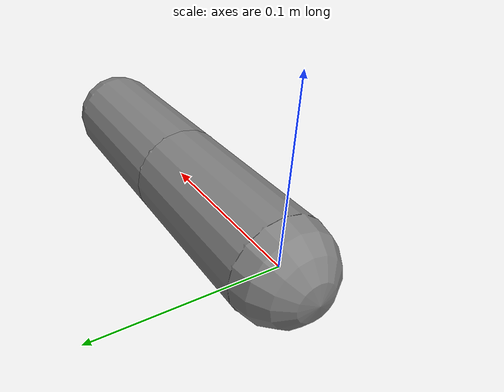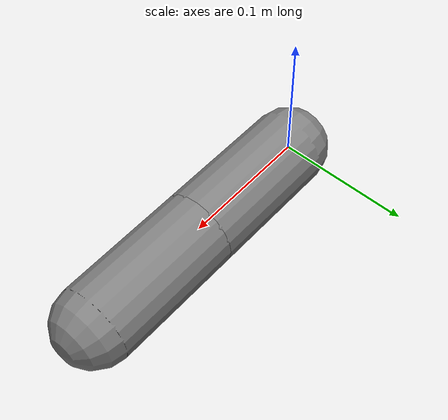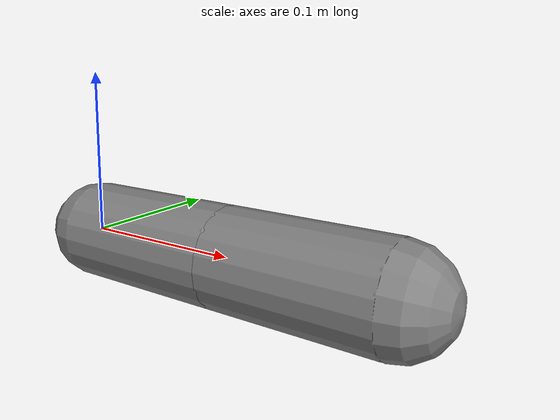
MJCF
<mujoco model="minimal_mock_arm">
  <compiler angle="radian"/>
  <worldbody>
    <body name="base" pos="0 0 0">
      <geom type="sphere" size="0.02" rgba="0.8 0.8 0.8 1"/>
      <body name="link0" pos="0 0 0">
        <joint name="left_j0" type="hinge" axis="0 1 0" range="-3.14 3.14"/>
        <geom type="capsule" fromto="0 0 0 0.1 0 0" size="0.03"/>
        <body name="link1" pos="0.1 0 0">
          <joint name="left_j1" type="hinge" axis="0 1 0" range="-3.14 3.14"/>
          <geom type="capsule" fromto="0 0 0 0.1 0 0" size="0.03"/>
        </body>
      </body>
    </body>
  </worldbody>
</mujoco>
